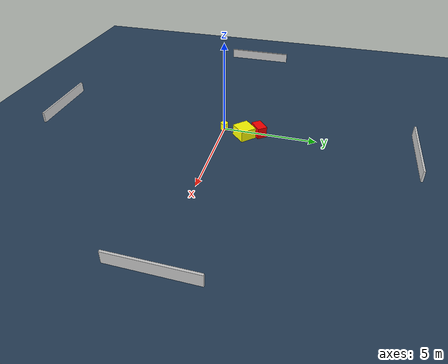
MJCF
<?xml version="1.0" ?>
<mujoco model="generated_environment">
  <option timestep="0.01" integrator="RK4" cone="elliptic"/>
  <default>
    <geom density="1"/>
  </default>
  <asset>
    <texture builtin="gradient" height="3072" name="skybox" rgb1="0.3 0.5 0.7" rgb2="0 0 0" type="skybox" width="512"/>
    <texture builtin="checker" height="300" name="groundplane" rgb1="0.2 0.3 0.4" rgb2="0.1 0.2 0.3" type="2d" width="300"/>
    <material name="groundplane" reflectance="0.2" texrepeat="5 5" texture="groundplane"/>
  </asset>
  <worldbody>
    <light dir="0 0 -1" directional="true" pos="0 0 1.5"/>
    <geom condim="3" friction="0.5 0.005 0.001" material="groundplane" name="floor" pos="0 0 0" size="0 0 0.05" type="plane"/>
    <body name="walls">
      <geom name="wall_1" condim="4" pos="-10.0 0.0 0.3" rgba="0.800000011920929 0.800000011920929 0.800000011920929 1.0" size="0.05 2.0 0.3" type="box"/>
      <geom name="wall_2" condim="4" pos="10.0 0.0 0.3" rgba="0.800000011920929 0.800000011920929 0.800000011920929 1.0" size="0.05 2.0 0.3" type="box"/>
      <geom name="wall_3" condim="4" pos="0.0 -10.0 0.3" rgba="0.800000011920929 0.800000011920929 0.800000011920929 1.0" size="2.0 0.05 0.3" type="box"/>
      <geom name="wall_4" condim="4" pos="0.0 10.0 0.3" rgba="0.800000011920929 0.800000011920929 0.800000011920929 1.0" size="2.0 0.05 0.3" type="box"/>
    </body>
    <body name="robot">
      <joint name="joint_x" type="slide" pos="0 0 0" axis="1 0 0"/>
      <joint name="joint_y" type="slide" pos="0 0 0" axis="0 1 0"/>
      <geom name="robot" type="cylinder" pos="0.0 0.0 0.2" size="0.2 0.2 0.0" mass="5.0" friction="1.0 0.005 0.0001" condim="4" rgba="1.0 1.0 0.0 1.0"/>
    </body>
    <body name="obstacle_1_movable">
      <geom name="obstacle_1_movable" condim="4" pos="0.4004446766606007 1.2136008261213462 0.3" euler="0 0 134.65005812313362" friction="0.0 0.005 0.001" rgba="1.0 1.0 0.0 1.0" size="0.43540004440939 0.4584213083267389 0.3" type="box" mass="0.1"/>
      <joint type="free"/>
    </body>
    <body name="obstacle_2_static">
      <geom name="obstacle_2_static" condim="4" pos="0.03338191843485019 1.9466381561994757 0.3" euler="0 0 128.1690787317183" friction="0.0 0.005 0.001" rgba="1.0 0.0 0.0 1.0" size="0.26114454523163516 0.3884469615039453 0.3" type="box"/>
    </body>
  </worldbody>
  <actuator>
    <motor name="actuator_x" joint="joint_x" gear="1" ctrlrange="-1 1"/>
    <motor name="actuator_y" joint="joint_y" gear="1" ctrlrange="-1 1"/>
  </actuator>
</mujoco>
